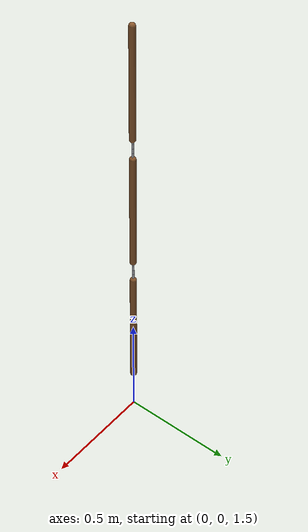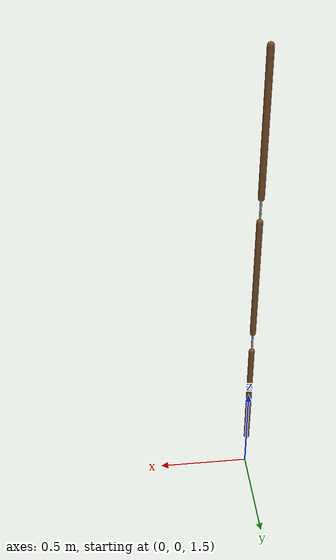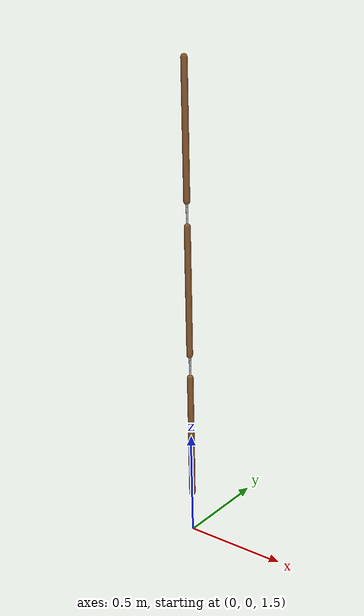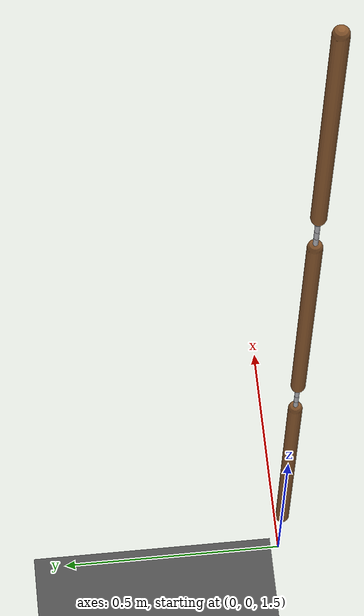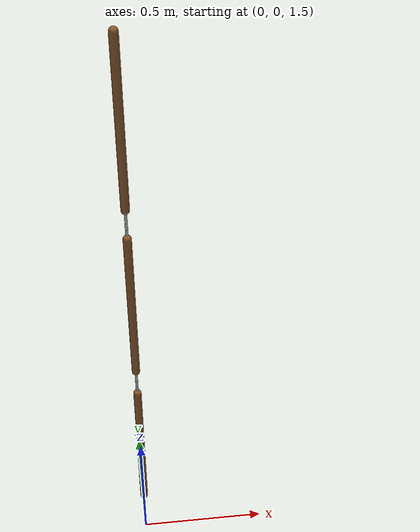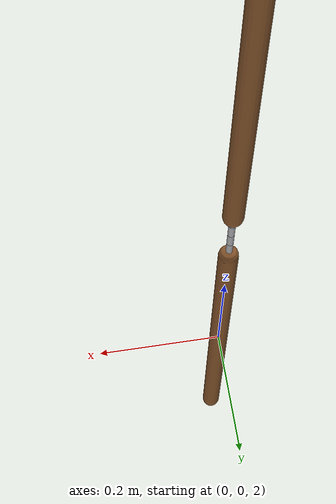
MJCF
<mujoco model="three_section_staff">

  <option timestep="0.002" gravity="0 0 -9.81" integrator="implicit">
    <flag contact="enable" constraint="enable"/>
  </option>

  <default>
    <joint damping="0.3" armature="0.001"/>
    <geom friction="0.5 0.005 0.001" condim="3" contype="1" conaffinity="1"/>
    <default class="rod">
      <geom type="capsule" size="0.015" rgba="0.55 0.35 0.18 1" density="700"/>
    </default>
    <default class="chain">
      <geom type="capsule" size="0.005" rgba="0.72 0.72 0.74 1" density="7800"/>
      <joint damping="0.2"/>
    </default>
  </default>

  <worldbody>
    <!-- Ground plane -->
    <geom name="floor" type="plane" size="5 5 0.1" rgba="0.3 0.3 0.3 1"
          contype="1" conaffinity="1"/>

    <!-- ROD 1 — Base section (the one you grip)      -->
    <!-- Spawns at height 2.0m, hanging down          -->
    <body name="rod_1" pos="0 0 2.0">
      <freejoint name="root"/>  <!-- Remove this line to fix rod_1 to world -->
      <geom class="rod" fromto="0 0 -0.30  0 0 0.30" name="rod_1_geom"/>

      <!-- CHAIN 1 — 4 ball-jointed capsule links       -->
      <body name="c1_link1" pos="0 0 0.325">
        <joint type="ball" name="c1_j1" damping="0.2"/>
        <geom class="chain" fromto="0 0 -0.0125  0 0 0.0125" name="c1_g1"/>

        <body name="c1_link2" pos="0 0 0.025">
          <joint type="ball" name="c1_j2" damping="0.2"/>
          <geom class="chain" fromto="0 0 -0.0125  0 0 0.0125" name="c1_g2"/>

          <body name="c1_link3" pos="0 0 0.025">
            <joint type="ball" name="c1_j3" damping="0.2"/>
            <geom class="chain" fromto="0 0 -0.0125  0 0 0.0125" name="c1_g3"/>

            <body name="c1_link4" pos="0 0 0.025">
              <joint type="ball" name="c1_j4" damping="0.2"/>
              <geom class="chain" fromto="0 0 -0.0125  0 0 0.0125" name="c1_g4"/>

              <!-- ROD 2 — Middle section                       -->
              <body name="rod_2" pos="0 0 0.3125">
                <joint type="ball" name="rod2_j" damping="0.3"/>
                <geom class="rod" fromto="0 0 -0.30  0 0 0.30" name="rod_2_geom"/>

                <!-- CHAIN 2 — 4 ball-jointed capsule links       -->
                <body name="c2_link1" pos="0 0 0.325">
                  <joint type="ball" name="c2_j1" damping="0.2"/>
                  <geom class="chain" fromto="0 0 -0.0125  0 0 0.0125" name="c2_g1"/>

                  <body name="c2_link2" pos="0 0 0.025">
                    <joint type="ball" name="c2_j2" damping="0.2"/>
                    <geom class="chain" fromto="0 0 -0.0125  0 0 0.0125" name="c2_g2"/>

                    <body name="c2_link3" pos="0 0 0.025">
                      <joint type="ball" name="c2_j3" damping="0.2"/>
                      <geom class="chain" fromto="0 0 -0.0125  0 0 0.0125" name="c2_g3"/>

                      <body name="c2_link4" pos="0 0 0.025">
                        <joint type="ball" name="c2_j4" damping="0.2"/>
                        <geom class="chain" fromto="0 0 -0.0125  0 0 0.0125" name="c2_g4"/>

                        <!-- ROD 3 — End section                          -->
                        <body name="rod_3" pos="0 0 0.3125">
                          <joint type="ball" name="rod3_j" damping="0.3"/>
                          <geom class="rod" fromto="0 0 -0.30  0 0 0.30" name="rod_3_geom"/>
                        </body>

                      </body>
                    </body>
                  </body>
                </body>
              </body>

            </body>
          </body>
        </body>
      </body>

    </body>
  </worldbody>

  <!-- ACTUATORS (optional — for controlled motion) -->

</mujoco>
